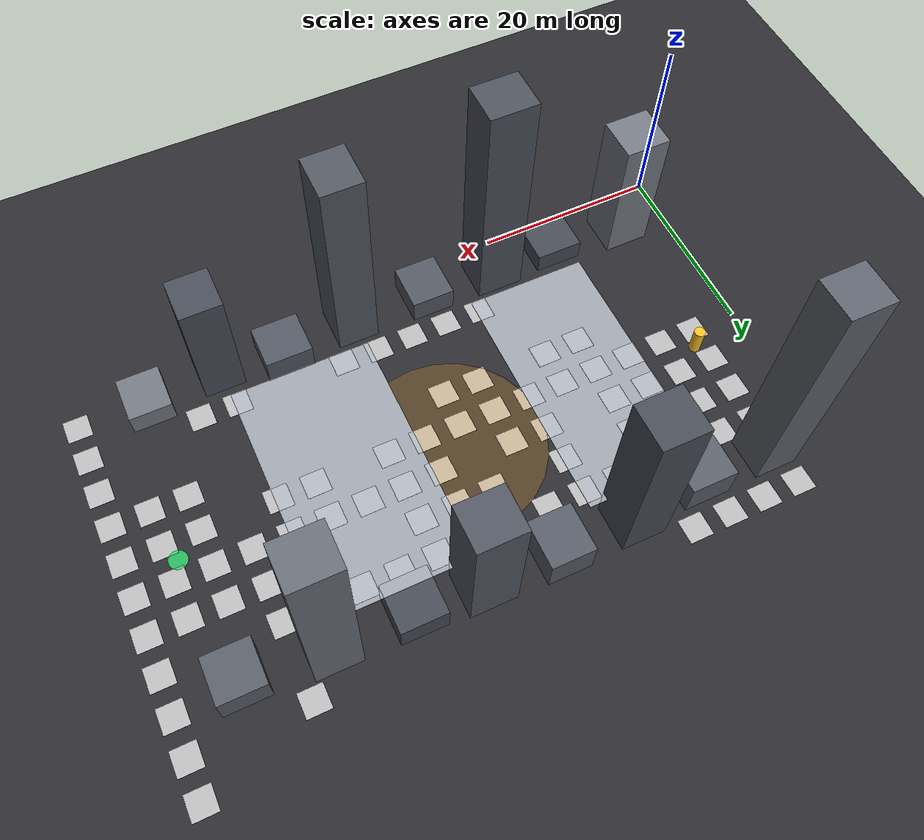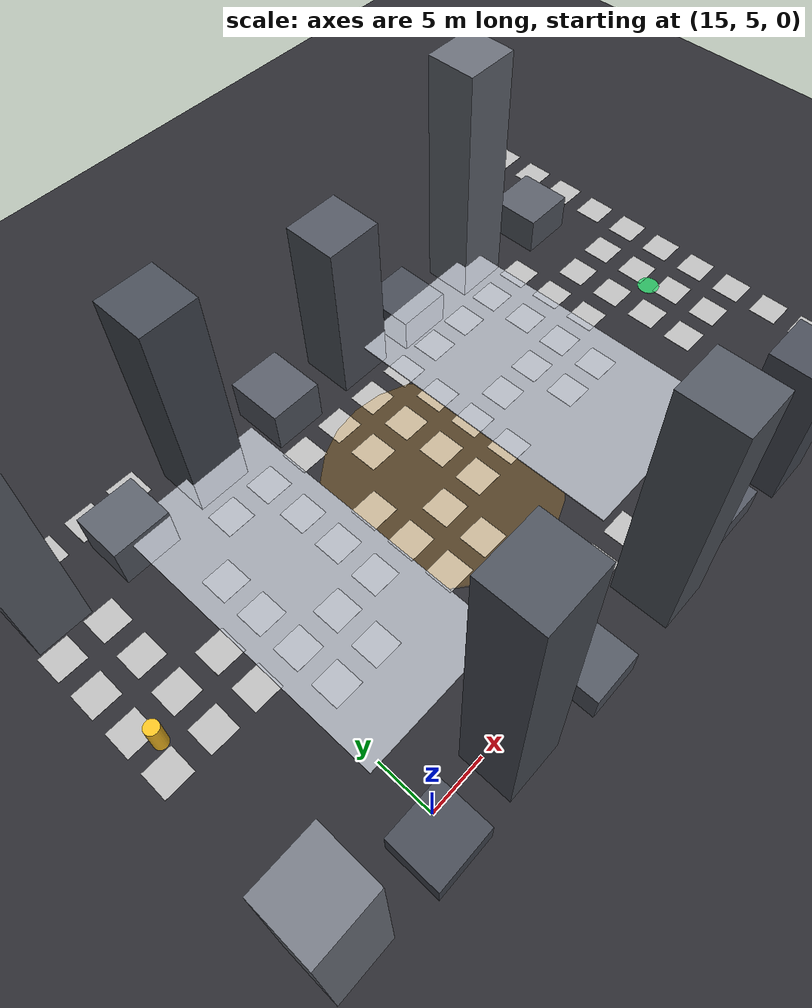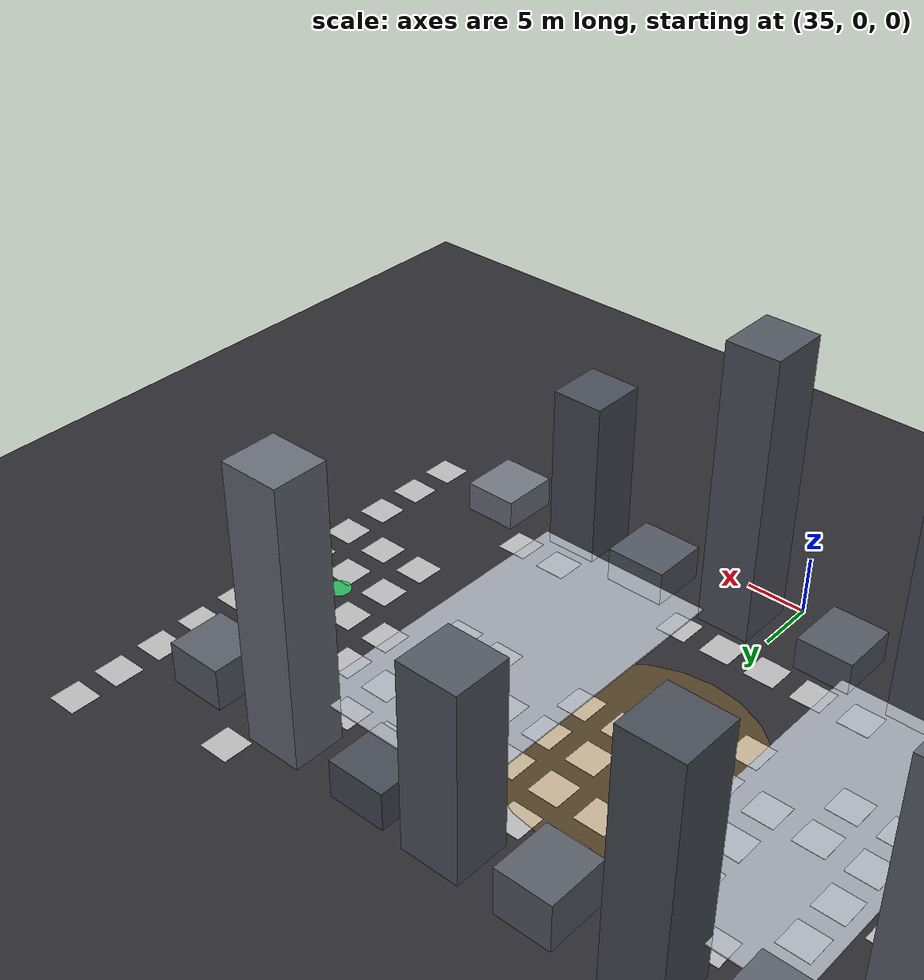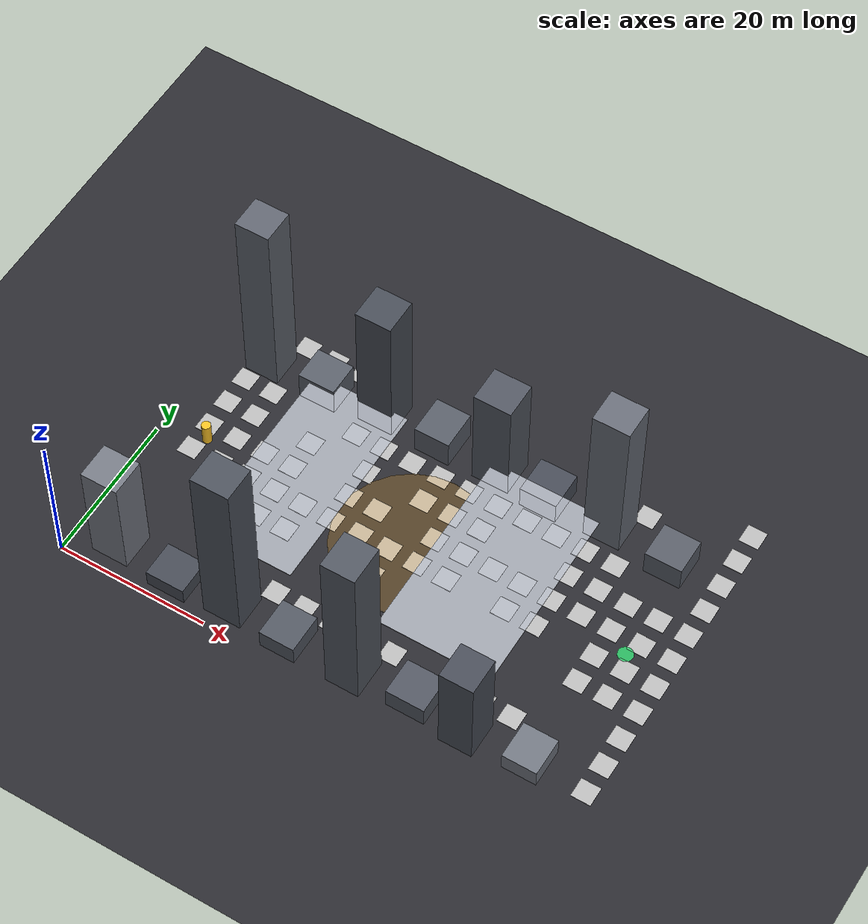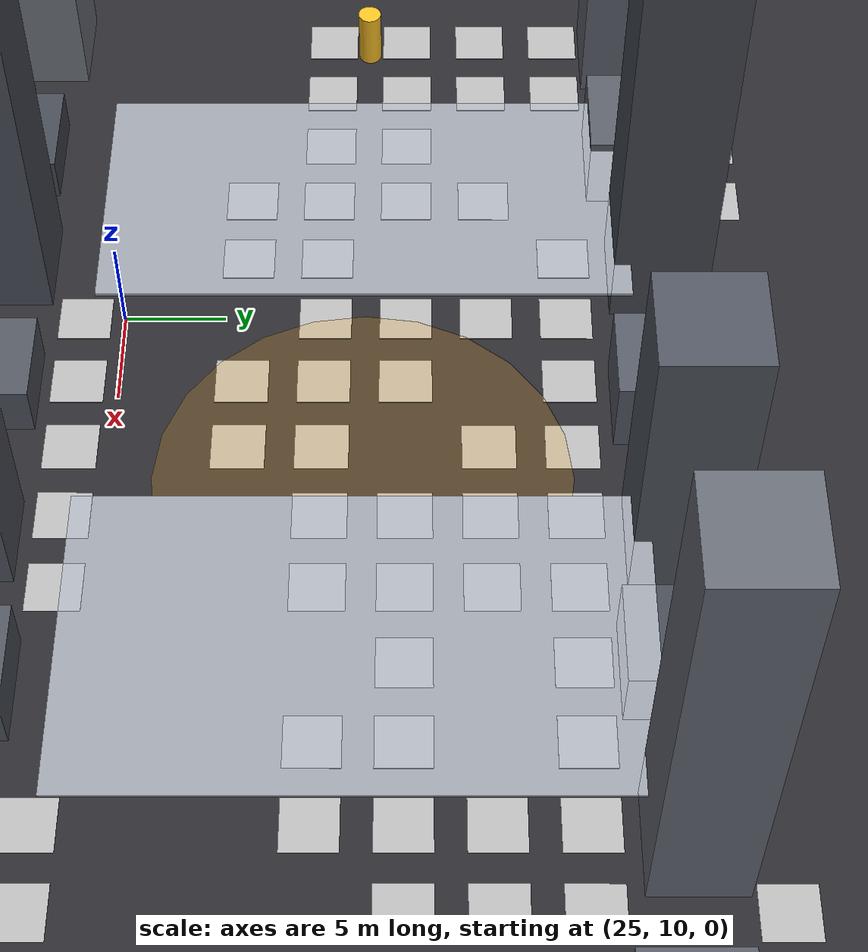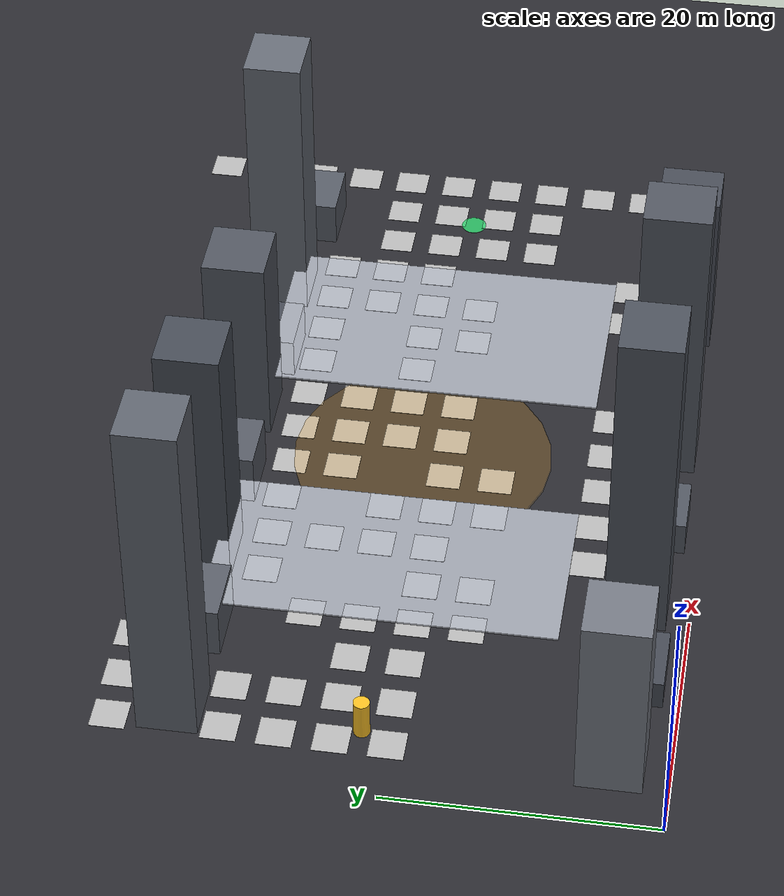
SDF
<sdf version="1.6">
 <world name="city">
  <gravity>0 0 -9.81</gravity>
  <scene>
   <ambient>0.5 0.52 0.55 1</ambient>
   <background>0.58 0.60 0.65 1</background>
   <shadows>true</shadows>
   <fog>
    <color>0.58 0.60 0.65 1</color>
    <type>linear</type>
    <start>16</start>
    <end>90</end>
    <density>0.045</density>
   </fog>
  </scene>
  <light name="sun" type="directional">
   <pose>0 0 40 0 0 0</pose>
   <diffuse>0.9 0.9 0.9 1</diffuse>
   <specular>0.2 0.2 0.2 1</specular>
   <direction>-0.4 0.3 -0.9</direction>
  </light>
  <model name="ground">
   <static>true</static>
   <link name="link">
    <collision name="c"><geometry><plane><normal>0 0 1</normal><size>400 400</size></plane></geometry></collision>
    <visual name="v">
     <geometry><plane><normal>0 0 1</normal><size>400 400</size></plane></geometry>
     <material><ambient>0.17 0.17 0.19</ambient><diffuse>0.17 0.17 0.19</diffuse></material>
    </visual>
   </link>
  </model>
  <model name="haze0">
   <static>true</static>
   <pose>46.000 22.000 3.60 0 0 0</pose>
   <link name="l">
    <visual name="v">
     <geometry><box><size>15.0 26.0 0.15</size></box></geometry>
     <material><ambient>0.72 0.74 0.78 0.88</ambient><diffuse>0.72 0.74 0.78 0.88</diffuse></material>
     <transparency>0.12</transparency>
    </visual>
   </link>
  </model>
  <model name="haze1">
   <static>true</static>
   <pose>20.000 22.000 3.60 0 0 0</pose>
   <link name="l">
    <visual name="v">
     <geometry><box><size>13.0 26.0 0.15</size></box></geometry>
     <material><ambient>0.72 0.74 0.78 0.88</ambient><diffuse>0.72 0.74 0.78 0.88</diffuse></material>
     <transparency>0.12</transparency>
    </visual>
   </link>
  </model>
  <model name="bldg0">
   <static>true</static>
   <pose>5.598 4.228 7.728 0 0 0</pose>
   <link name="l">
    <collision name="c">
     <geometry><box><size>4.9079999523237765 4.783280377645961 15.456229566302445</size></box></geometry>
    </collision>
    <visual name="v">
     <geometry><box><size>4.9079999523237765 4.783280377645961 15.456229566302445</size></box></geometry>
     <material>
      <ambient>0.4579045112528012 0.4779045112528012 0.5179045112528011 1</ambient>
      <diffuse>0.4579045112528012 0.4779045112528012 0.5179045112528011 1</diffuse>
     </material>
    </visual>
   </link>
  </model>
  <model name="bldg2">
   <static>true</static>
   <pose>6.353 35.679 13.980 0 0 0</pose>
   <link name="l">
    <collision name="c">
     <geometry><box><size>4.586155961119643 4.433868333320952 27.960979341909052</size></box></geometry>
    </collision>
    <visual name="v">
     <geometry><box><size>4.586155961119643 4.433868333320952 27.960979341909052</size></box></geometry>
     <material>
      <ambient>0.37586106463982594 0.39586106463982595 0.43586106463982593 1</ambient>
      <diffuse>0.37586106463982594 0.39586106463982595 0.43586106463982593 1</diffuse>
     </material>
    </visual>
   </link>
  </model>
  <model name="bldg4">
   <static>true</static>
   <pose>13.997 3.539 1.170 0 0 0</pose>
   <link name="l">
    <collision name="c">
     <geometry><box><size>5.161571293699209 4.694757312674667 2.340588724838554</size></box></geometry>
    </collision>
    <visual name="v">
     <geometry><box><size>5.161571293699209 4.694757312674667 2.340588724838554</size></box></geometry>
     <material>
      <ambient>0.2711304226191026 0.2911304226191026 0.3311304226191026 1</ambient>
      <diffuse>0.2711304226191026 0.2911304226191026 0.3311304226191026 1</diffuse>
     </material>
    </visual>
   </link>
  </model>
  <model name="bldg6">
   <static>true</static>
   <pose>14.439 35.682 2.066 0 0 0</pose>
   <link name="l">
    <collision name="c">
     <geometry><box><size>5.024207479938134 4.566849772177902 4.131291794526651</size></box></geometry>
    </collision>
    <visual name="v">
     <geometry><box><size>5.024207479938134 4.566849772177902 4.131291794526651</size></box></geometry>
     <material>
      <ambient>0.35138545612405936 0.3713854561240594 0.41138545612405936 1</ambient>
      <diffuse>0.35138545612405936 0.3713854561240594 0.41138545612405936 1</diffuse>
     </material>
    </visual>
   </link>
  </model>
  <model name="bldg8">
   <static>true</static>
   <pose>21.547 3.972 13.385 0 0 0</pose>
   <link name="l">
    <collision name="c">
     <geometry><box><size>5.061614468026217 4.560863538630194 26.770679133671653</size></box></geometry>
    </collision>
    <visual name="v">
     <geometry><box><size>5.061614468026217 4.560863538630194 26.770679133671653</size></box></geometry>
     <material>
      <ambient>0.2994209570516444 0.3194209570516444 0.3594209570516444 1</ambient>
      <diffuse>0.2994209570516444 0.3194209570516444 0.3594209570516444 1</diffuse>
     </material>
    </visual>
   </link>
  </model>
  <model name="bldg10">
   <static>true</static>
   <pose>22.262 36.591 10.403 0 0 0</pose>
   <link name="l">
    <collision name="c">
     <geometry><box><size>4.796808612363529 4.793231684387425 20.806894373819596</size></box></geometry>
    </collision>
    <visual name="v">
     <geometry><box><size>4.796808612363529 4.793231684387425 20.806894373819596</size></box></geometry>
     <material>
      <ambient>0.27669576715477995 0.29669576715477997 0.33669576715477995 1</ambient>
      <diffuse>0.27669576715477995 0.29669576715477997 0.33669576715477995 1</diffuse>
     </material>
    </visual>
   </link>
  </model>
  <model name="bldg12">
   <static>true</static>
   <pose>29.617 3.604 1.381 0 0 0</pose>
   <link name="l">
    <collision name="c">
     <geometry><box><size>4.678565817079893 5.141658886268009 2.7625495245760283</size></box></geometry>
    </collision>
    <visual name="v">
     <geometry><box><size>4.678565817079893 5.141658886268009 2.7625495245760283</size></box></geometry>
     <material>
      <ambient>0.32177276819323664 0.34177276819323665 0.38177276819323663 1</ambient>
      <diffuse>0.32177276819323664 0.34177276819323665 0.38177276819323663 1</diffuse>
     </material>
    </visual>
   </link>
  </model>
  <model name="bldg14">
   <static>true</static>
   <pose>30.478 36.550 2.058 0 0 0</pose>
   <link name="l">
    <collision name="c">
     <geometry><box><size>4.725611727939748 5.191287703294076 4.115145483852131</size></box></geometry>
    </collision>
    <visual name="v">
     <geometry><box><size>4.725611727939748 5.191287703294076 4.115145483852131</size></box></geometry>
     <material>
      <ambient>0.3417865659885859 0.36178656598858594 0.4017865659885859 1</ambient>
      <diffuse>0.3417865659885859 0.36178656598858594 0.4017865659885859 1</diffuse>
     </material>
    </visual>
   </link>
  </model>
  <model name="bldg16">
   <static>true</static>
   <pose>38.451 3.595 12.191 0 0 0</pose>
   <link name="l">
    <collision name="c">
     <geometry><box><size>4.4554681208088 5.044225420996331 24.382665960957162</size></box></geometry>
    </collision>
    <visual name="v">
     <geometry><box><size>4.4554681208088 5.044225420996331 24.382665960957162</size></box></geometry>
     <material>
      <ambient>0.32032759217134293 0.34032759217134295 0.38032759217134293 1</ambient>
      <diffuse>0.32032759217134293 0.34032759217134295 0.38032759217134293 1</diffuse>
     </material>
    </visual>
   </link>
  </model>
  <model name="bldg18">
   <static>true</static>
   <pose>38.479 36.580 8.018 0 0 0</pose>
   <link name="l">
    <collision name="c">
     <geometry><box><size>4.996678183844516 4.783178556259883 16.03543676609858</size></box></geometry>
    </collision>
    <visual name="v">
     <geometry><box><size>4.996678183844516 4.783178556259883 16.03543676609858</size></box></geometry>
     <material>
      <ambient>0.31978629177319806 0.3397862917731981 0.37978629177319806 1</ambient>
      <diffuse>0.31978629177319806 0.3397862917731981 0.37978629177319806 1</diffuse>
     </material>
    </visual>
   </link>
  </model>
  <model name="bldg20">
   <static>true</static>
   <pose>46.406 4.354 1.469 0 0 0</pose>
   <link name="l">
    <collision name="c">
     <geometry><box><size>5.105162241272678 4.881084625558635 2.9373814900652224</size></box></geometry>
    </collision>
    <visual name="v">
     <geometry><box><size>5.105162241272678 4.881084625558635 2.9373814900652224</size></box></geometry>
     <material>
      <ambient>0.31938079990490065 0.33938079990490067 0.37938079990490065 1</ambient>
      <diffuse>0.31938079990490065 0.33938079990490067 0.37938079990490065 1</diffuse>
     </material>
    </visual>
   </link>
  </model>
  <model name="bldg22">
   <static>true</static>
   <pose>45.428 36.112 1.643 0 0 0</pose>
   <link name="l">
    <collision name="c">
     <geometry><box><size>4.915087117253336 5.081345659230206 3.2855484137417323</size></box></geometry>
    </collision>
    <visual name="v">
     <geometry><box><size>4.915087117253336 5.081345659230206 3.2855484137417323</size></box></geometry>
     <material>
      <ambient>0.27136447679390635 0.29136447679390637 0.33136447679390635 1</ambient>
      <diffuse>0.27136447679390635 0.29136447679390637 0.33136447679390635 1</diffuse>
     </material>
    </visual>
   </link>
  </model>
  <model name="bldg24">
   <static>true</static>
   <pose>53.514 3.513 7.127 0 0 0</pose>
   <link name="l">
    <collision name="c">
     <geometry><box><size>4.420253602515084 4.757484369195373 14.253215321527673</size></box></geometry>
    </collision>
    <visual name="v">
     <geometry><box><size>4.420253602515084 4.757484369195373 14.253215321527673</size></box></geometry>
     <material>
      <ambient>0.2802116742103209 0.3002116742103209 0.3402116742103209 1</ambient>
      <diffuse>0.2802116742103209 0.3002116742103209 0.3402116742103209 1</diffuse>
     </material>
    </visual>
   </link>
  </model>
  <model name="bldg26">
   <static>true</static>
   <pose>53.853 36.252 11.687 0 0 0</pose>
   <link name="l">
    <collision name="c">
     <geometry><box><size>4.840028815013505 4.4369451380008345 23.374016702756848</size></box></geometry>
    </collision>
    <visual name="v">
     <geometry><box><size>4.840028815013505 4.4369451380008345 23.374016702756848</size></box></geometry>
     <material>
      <ambient>0.4061763672263972 0.42617636722639723 0.4661763672263972 1</ambient>
      <diffuse>0.4061763672263972 0.42617636722639723 0.4661763672263972 1</diffuse>
     </material>
    </visual>
   </link>
  </model>
  <model name="bldg28">
   <static>true</static>
   <pose>61.476 4.317 1.278 0 0 0</pose>
   <link name="l">
    <collision name="c">
     <geometry><box><size>4.540237717952963 4.96919008036445 2.5563930893004243</size></box></geometry>
    </collision>
    <visual name="v">
     <geometry><box><size>4.540237717952963 4.96919008036445 2.5563930893004243</size></box></geometry>
     <material>
      <ambient>0.44223431020492043 0.46223431020492045 0.5022343102049205 1</ambient>
      <diffuse>0.44223431020492043 0.46223431020492045 0.5022343102049205 1</diffuse>
     </material>
    </visual>
   </link>
  </model>
  <model name="bldg30">
   <static>true</static>
   <pose>62.538 35.518 1.808 0 0 0</pose>
   <link name="l">
    <collision name="c">
     <geometry><box><size>4.880943626523322 4.806570044724728 3.6160597511576924</size></box></geometry>
    </collision>
    <visual name="v">
     <geometry><box><size>4.880943626523322 4.806570044724728 3.6160597511576924</size></box></geometry>
     <material>
      <ambient>0.3450297950203185 0.3650297950203185 0.4050297950203185 1</ambient>
      <diffuse>0.3450297950203185 0.3650297950203185 0.4050297950203185 1</diffuse>
     </material>
    </visual>
   </link>
  </model>
  <model name="hard_patch">
   <static>true</static>
   <pose>35.000 22.000 0.03 0 0 0</pose>
   <link name="l">
    <visual name="v">
     <geometry><cylinder><radius>10.0</radius><length>0.3</length></cylinder></geometry>
     <material><ambient>0.96 0.62 0.04 0.16</ambient><diffuse>0.96 0.62 0.04 0.16</diffuse></material>
    </visual>
   </link>
  </model>
  <model name="aruco0">
   <static>true</static>
   <pose>5.000 20.000 0.02 0 0 0</pose>
   <link name="l">
    <visual name="v">
     <geometry><box><size>2.6 2.6 0.02</size></box></geometry>
     <material>
      <script><uri>file://materials/scripts</uri><uri>file://materials/textures</uri><name>aruco/0</name></script>
     </material>
    </visual>
   </link>
  </model>
  <model name="aruco1">
   <static>true</static>
   <pose>5.000 24.000 0.02 0 0 0</pose>
   <link name="l">
    <visual name="v">
     <geometry><box><size>2.6 2.6 0.02</size></box></geometry>
     <material>
      <script><uri>file://materials/scripts</uri><uri>file://materials/textures</uri><name>aruco/1</name></script>
     </material>
    </visual>
   </link>
  </model>
  <model name="aruco2">
   <static>true</static>
   <pose>5.000 28.000 0.02 0 0 0</pose>
   <link name="l">
    <visual name="v">
     <geometry><box><size>2.6 2.6 0.02</size></box></geometry>
     <material>
      <script><uri>file://materials/scripts</uri><uri>file://materials/textures</uri><name>aruco/2</name></script>
     </material>
    </visual>
   </link>
  </model>
  <model name="aruco3">
   <static>true</static>
   <pose>5.000 32.000 0.02 0 0 0</pose>
   <link name="l">
    <visual name="v">
     <geometry><box><size>2.6 2.6 0.02</size></box></geometry>
     <material>
      <script><uri>file://materials/scripts</uri><uri>file://materials/textures</uri><name>aruco/3</name></script>
     </material>
    </visual>
   </link>
  </model>
  <model name="aruco4">
   <static>true</static>
   <pose>5.000 40.000 0.02 0 0 0</pose>
   <link name="l">
    <visual name="v">
     <geometry><box><size>2.6 2.6 0.02</size></box></geometry>
     <material>
      <script><uri>file://materials/scripts</uri><uri>file://materials/textures</uri><name>aruco/4</name></script>
     </material>
    </visual>
   </link>
  </model>
  <model name="aruco5">
   <static>true</static>
   <pose>9.000 20.000 0.02 0 0 0</pose>
   <link name="l">
    <visual name="v">
     <geometry><box><size>2.6 2.6 0.02</size></box></geometry>
     <material>
      <script><uri>file://materials/scripts</uri><uri>file://materials/textures</uri><name>aruco/5</name></script>
     </material>
    </visual>
   </link>
  </model>
  <model name="aruco6">
   <static>true</static>
   <pose>9.000 24.000 0.02 0 0 0</pose>
   <link name="l">
    <visual name="v">
     <geometry><box><size>2.6 2.6 0.02</size></box></geometry>
     <material>
      <script><uri>file://materials/scripts</uri><uri>file://materials/textures</uri><name>aruco/6</name></script>
     </material>
    </visual>
   </link>
  </model>
  <model name="aruco7">
   <static>true</static>
   <pose>9.000 28.000 0.02 0 0 0</pose>
   <link name="l">
    <visual name="v">
     <geometry><box><size>2.6 2.6 0.02</size></box></geometry>
     <material>
      <script><uri>file://materials/scripts</uri><uri>file://materials/textures</uri><name>aruco/7</name></script>
     </material>
    </visual>
   </link>
  </model>
  <model name="aruco8">
   <static>true</static>
   <pose>9.000 32.000 0.02 0 0 0</pose>
   <link name="l">
    <visual name="v">
     <geometry><box><size>2.6 2.6 0.02</size></box></geometry>
     <material>
      <script><uri>file://materials/scripts</uri><uri>file://materials/textures</uri><name>aruco/8</name></script>
     </material>
    </visual>
   </link>
  </model>
  <model name="aruco9">
   <static>true</static>
   <pose>9.000 40.000 0.02 0 0 0</pose>
   <link name="l">
    <visual name="v">
     <geometry><box><size>2.6 2.6 0.02</size></box></geometry>
     <material>
      <script><uri>file://materials/scripts</uri><uri>file://materials/textures</uri><name>aruco/9</name></script>
     </material>
    </visual>
   </link>
  </model>
  <model name="aruco10">
   <static>true</static>
   <pose>13.000 20.000 0.02 0 0 0</pose>
   <link name="l">
    <visual name="v">
     <geometry><box><size>2.6 2.6 0.02</size></box></geometry>
     <material>
      <script><uri>file://materials/scripts</uri><uri>file://materials/textures</uri><name>aruco/10</name></script>
     </material>
    </visual>
   </link>
  </model>
  <model name="aruco11">
   <static>true</static>
   <pose>13.000 24.000 0.02 0 0 0</pose>
   <link name="l">
    <visual name="v">
     <geometry><box><size>2.6 2.6 0.02</size></box></geometry>
     <material>
      <script><uri>file://materials/scripts</uri><uri>file://materials/textures</uri><name>aruco/11</name></script>
     </material>
    </visual>
   </link>
  </model>
  <model name="aruco12">
   <static>true</static>
   <pose>13.000 40.000 0.02 0 0 0</pose>
   <link name="l">
    <visual name="v">
     <geometry><box><size>2.6 2.6 0.02</size></box></geometry>
     <material>
      <script><uri>file://materials/scripts</uri><uri>file://materials/textures</uri><name>aruco/12</name></script>
     </material>
    </visual>
   </link>
  </model>
  <model name="aruco13">
   <static>true</static>
   <pose>17.000 16.000 0.02 0 0 0</pose>
   <link name="l">
    <visual name="v">
     <geometry><box><size>2.6 2.6 0.02</size></box></geometry>
     <material>
      <script><uri>file://materials/scripts</uri><uri>file://materials/textures</uri><name>aruco/13</name></script>
     </material>
    </visual>
   </link>
  </model>
  <model name="aruco14">
   <static>true</static>
   <pose>17.000 20.000 0.02 0 0 0</pose>
   <link name="l">
    <visual name="v">
     <geometry><box><size>2.6 2.6 0.02</size></box></geometry>
     <material>
      <script><uri>file://materials/scripts</uri><uri>file://materials/textures</uri><name>aruco/14</name></script>
     </material>
    </visual>
   </link>
  </model>
  <model name="aruco15">
   <static>true</static>
   <pose>17.000 24.000 0.02 0 0 0</pose>
   <link name="l">
    <visual name="v">
     <geometry><box><size>2.6 2.6 0.02</size></box></geometry>
     <material>
      <script><uri>file://materials/scripts</uri><uri>file://materials/textures</uri><name>aruco/15</name></script>
     </material>
    </visual>
   </link>
  </model>
  <model name="aruco16">
   <static>true</static>
   <pose>17.000 28.000 0.02 0 0 0</pose>
   <link name="l">
    <visual name="v">
     <geometry><box><size>2.6 2.6 0.02</size></box></geometry>
     <material>
      <script><uri>file://materials/scripts</uri><uri>file://materials/textures</uri><name>aruco/16</name></script>
     </material>
    </visual>
   </link>
  </model>
  <model name="aruco17">
   <static>true</static>
   <pose>17.000 40.000 0.02 0 0 0</pose>
   <link name="l">
    <visual name="v">
     <geometry><box><size>2.6 2.6 0.02</size></box></geometry>
     <material>
      <script><uri>file://materials/scripts</uri><uri>file://materials/textures</uri><name>aruco/17</name></script>
     </material>
    </visual>
   </link>
  </model>
  <model name="aruco18">
   <static>true</static>
   <pose>21.000 16.000 0.02 0 0 0</pose>
   <link name="l">
    <visual name="v">
     <geometry><box><size>2.6 2.6 0.02</size></box></geometry>
     <material>
      <script><uri>file://materials/scripts</uri><uri>file://materials/textures</uri><name>aruco/18</name></script>
     </material>
    </visual>
   </link>
  </model>
  <model name="aruco19">
   <static>true</static>
   <pose>21.000 20.000 0.02 0 0 0</pose>
   <link name="l">
    <visual name="v">
     <geometry><box><size>2.6 2.6 0.02</size></box></geometry>
     <material>
      <script><uri>file://materials/scripts</uri><uri>file://materials/textures</uri><name>aruco/19</name></script>
     </material>
    </visual>
   </link>
  </model>
  <model name="aruco20">
   <static>true</static>
   <pose>21.000 32.000 0.02 0 0 0</pose>
   <link name="l">
    <visual name="v">
     <geometry><box><size>2.6 2.6 0.02</size></box></geometry>
     <material>
      <script><uri>file://materials/scripts</uri><uri>file://materials/textures</uri><name>aruco/20</name></script>
     </material>
    </visual>
   </link>
  </model>
  <model name="aruco21">
   <static>true</static>
   <pose>25.000 8.000 0.02 0 0 0</pose>
   <link name="l">
    <visual name="v">
     <geometry><box><size>2.6 2.6 0.02</size></box></geometry>
     <material>
      <script><uri>file://materials/scripts</uri><uri>file://materials/textures</uri><name>aruco/21</name></script>
     </material>
    </visual>
   </link>
  </model>
  <model name="aruco22">
   <static>true</static>
   <pose>25.000 20.000 0.02 0 0 0</pose>
   <link name="l">
    <visual name="v">
     <geometry><box><size>2.6 2.6 0.02</size></box></geometry>
     <material>
      <script><uri>file://materials/scripts</uri><uri>file://materials/textures</uri><name>aruco/22</name></script>
     </material>
    </visual>
   </link>
  </model>
  <model name="aruco23">
   <static>true</static>
   <pose>25.000 24.000 0.02 0 0 0</pose>
   <link name="l">
    <visual name="v">
     <geometry><box><size>2.6 2.6 0.02</size></box></geometry>
     <material>
      <script><uri>file://materials/scripts</uri><uri>file://materials/textures</uri><name>aruco/23</name></script>
     </material>
    </visual>
   </link>
  </model>
  <model name="aruco24">
   <static>true</static>
   <pose>25.000 28.000 0.02 0 0 0</pose>
   <link name="l">
    <visual name="v">
     <geometry><box><size>2.6 2.6 0.02</size></box></geometry>
     <material>
      <script><uri>file://materials/scripts</uri><uri>file://materials/textures</uri><name>aruco/24</name></script>
     </material>
    </visual>
   </link>
  </model>
  <model name="aruco25">
   <static>true</static>
   <pose>25.000 32.000 0.02 0 0 0</pose>
   <link name="l">
    <visual name="v">
     <geometry><box><size>2.6 2.6 0.02</size></box></geometry>
     <material>
      <script><uri>file://materials/scripts</uri><uri>file://materials/textures</uri><name>aruco/25</name></script>
     </material>
    </visual>
   </link>
  </model>
  <model name="aruco26">
   <static>true</static>
   <pose>29.000 8.000 0.02 0 0 0</pose>
   <link name="l">
    <visual name="v">
     <geometry><box><size>2.6 2.6 0.02</size></box></geometry>
     <material>
      <script><uri>file://materials/scripts</uri><uri>file://materials/textures</uri><name>aruco/26</name></script>
     </material>
    </visual>
   </link>
  </model>
  <model name="aruco27">
   <static>true</static>
   <pose>29.000 16.000 0.02 0 0 0</pose>
   <link name="l">
    <visual name="v">
     <geometry><box><size>2.6 2.6 0.02</size></box></geometry>
     <material>
      <script><uri>file://materials/scripts</uri><uri>file://materials/textures</uri><name>aruco/27</name></script>
     </material>
    </visual>
   </link>
  </model>
  <model name="aruco28">
   <static>true</static>
   <pose>29.000 20.000 0.02 0 0 0</pose>
   <link name="l">
    <visual name="v">
     <geometry><box><size>2.6 2.6 0.02</size></box></geometry>
     <material>
      <script><uri>file://materials/scripts</uri><uri>file://materials/textures</uri><name>aruco/28</name></script>
     </material>
    </visual>
   </link>
  </model>
  <model name="aruco29">
   <static>true</static>
   <pose>29.000 24.000 0.02 0 0 0</pose>
   <link name="l">
    <visual name="v">
     <geometry><box><size>2.6 2.6 0.02</size></box></geometry>
     <material>
      <script><uri>file://materials/scripts</uri><uri>file://materials/textures</uri><name>aruco/29</name></script>
     </material>
    </visual>
   </link>
  </model>
  <model name="aruco30">
   <static>true</static>
   <pose>29.000 32.000 0.02 0 0 0</pose>
   <link name="l">
    <visual name="v">
     <geometry><box><size>2.6 2.6 0.02</size></box></geometry>
     <material>
      <script><uri>file://materials/scripts</uri><uri>file://materials/textures</uri><name>aruco/30</name></script>
     </material>
    </visual>
   </link>
  </model>
  <model name="aruco31">
   <static>true</static>
   <pose>33.000 8.000 0.02 0 0 0</pose>
   <link name="l">
    <visual name="v">
     <geometry><box><size>2.6 2.6 0.02</size></box></geometry>
     <material>
      <script><uri>file://materials/scripts</uri><uri>file://materials/textures</uri><name>aruco/31</name></script>
     </material>
    </visual>
   </link>
  </model>
  <model name="aruco32">
   <static>true</static>
   <pose>33.000 16.000 0.02 0 0 0</pose>
   <link name="l">
    <visual name="v">
     <geometry><box><size>2.6 2.6 0.02</size></box></geometry>
     <material>
      <script><uri>file://materials/scripts</uri><uri>file://materials/textures</uri><name>aruco/32</name></script>
     </material>
    </visual>
   </link>
  </model>
  <model name="aruco33">
   <static>true</static>
   <pose>33.000 20.000 0.02 0 0 0</pose>
   <link name="l">
    <visual name="v">
     <geometry><box><size>2.6 2.6 0.02</size></box></geometry>
     <material>
      <script><uri>file://materials/scripts</uri><uri>file://materials/textures</uri><name>aruco/33</name></script>
     </material>
    </visual>
   </link>
  </model>
  <model name="aruco34">
   <static>true</static>
   <pose>33.000 28.000 0.02 0 0 0</pose>
   <link name="l">
    <visual name="v">
     <geometry><box><size>2.6 2.6 0.02</size></box></geometry>
     <material>
      <script><uri>file://materials/scripts</uri><uri>file://materials/textures</uri><name>aruco/34</name></script>
     </material>
    </visual>
   </link>
  </model>
  <model name="aruco35">
   <static>true</static>
   <pose>33.000 32.000 0.02 0 0 0</pose>
   <link name="l">
    <visual name="v">
     <geometry><box><size>2.6 2.6 0.02</size></box></geometry>
     <material>
      <script><uri>file://materials/scripts</uri><uri>file://materials/textures</uri><name>aruco/35</name></script>
     </material>
    </visual>
   </link>
  </model>
  <model name="aruco36">
   <static>true</static>
   <pose>37.000 8.000 0.02 0 0 0</pose>
   <link name="l">
    <visual name="v">
     <geometry><box><size>2.6 2.6 0.02</size></box></geometry>
     <material>
      <script><uri>file://materials/scripts</uri><uri>file://materials/textures</uri><name>aruco/36</name></script>
     </material>
    </visual>
   </link>
  </model>
  <model name="aruco37">
   <static>true</static>
   <pose>37.000 20.000 0.02 0 0 0</pose>
   <link name="l">
    <visual name="v">
     <geometry><box><size>2.6 2.6 0.02</size></box></geometry>
     <material>
      <script><uri>file://materials/scripts</uri><uri>file://materials/textures</uri><name>aruco/37</name></script>
     </material>
    </visual>
   </link>
  </model>
  <model name="aruco38">
   <static>true</static>
   <pose>37.000 24.000 0.02 0 0 0</pose>
   <link name="l">
    <visual name="v">
     <geometry><box><size>2.6 2.6 0.02</size></box></geometry>
     <material>
      <script><uri>file://materials/scripts</uri><uri>file://materials/textures</uri><name>aruco/38</name></script>
     </material>
    </visual>
   </link>
  </model>
  <model name="aruco39">
   <static>true</static>
   <pose>37.000 28.000 0.02 0 0 0</pose>
   <link name="l">
    <visual name="v">
     <geometry><box><size>2.6 2.6 0.02</size></box></geometry>
     <material>
      <script><uri>file://materials/scripts</uri><uri>file://materials/textures</uri><name>aruco/39</name></script>
     </material>
    </visual>
   </link>
  </model>
  <model name="aruco40">
   <static>true</static>
   <pose>37.000 32.000 0.02 0 0 0</pose>
   <link name="l">
    <visual name="v">
     <geometry><box><size>2.6 2.6 0.02</size></box></geometry>
     <material>
      <script><uri>file://materials/scripts</uri><uri>file://materials/textures</uri><name>aruco/40</name></script>
     </material>
    </visual>
   </link>
  </model>
  <model name="aruco41">
   <static>true</static>
   <pose>41.000 8.000 0.02 0 0 0</pose>
   <link name="l">
    <visual name="v">
     <geometry><box><size>2.6 2.6 0.02</size></box></geometry>
     <material>
      <script><uri>file://materials/scripts</uri><uri>file://materials/textures</uri><name>aruco/41</name></script>
     </material>
    </visual>
   </link>
  </model>
  <model name="aruco42">
   <static>true</static>
   <pose>41.000 20.000 0.02 0 0 0</pose>
   <link name="l">
    <visual name="v">
     <geometry><box><size>2.6 2.6 0.02</size></box></geometry>
     <material>
      <script><uri>file://materials/scripts</uri><uri>file://materials/textures</uri><name>aruco/42</name></script>
     </material>
    </visual>
   </link>
  </model>
  <model name="aruco43">
   <static>true</static>
   <pose>41.000 24.000 0.02 0 0 0</pose>
   <link name="l">
    <visual name="v">
     <geometry><box><size>2.6 2.6 0.02</size></box></geometry>
     <material>
      <script><uri>file://materials/scripts</uri><uri>file://materials/textures</uri><name>aruco/43</name></script>
     </material>
    </visual>
   </link>
  </model>
  <model name="aruco44">
   <static>true</static>
   <pose>41.000 28.000 0.02 0 0 0</pose>
   <link name="l">
    <visual name="v">
     <geometry><box><size>2.6 2.6 0.02</size></box></geometry>
     <material>
      <script><uri>file://materials/scripts</uri><uri>file://materials/textures</uri><name>aruco/44</name></script>
     </material>
    </visual>
   </link>
  </model>
  <model name="aruco45">
   <static>true</static>
   <pose>41.000 32.000 0.02 0 0 0</pose>
   <link name="l">
    <visual name="v">
     <geometry><box><size>2.6 2.6 0.02</size></box></geometry>
     <material>
      <script><uri>file://materials/scripts</uri><uri>file://materials/textures</uri><name>aruco/45</name></script>
     </material>
    </visual>
   </link>
  </model>
  <model name="aruco46">
   <static>true</static>
   <pose>45.000 24.000 0.02 0 0 0</pose>
   <link name="l">
    <visual name="v">
     <geometry><box><size>2.6 2.6 0.02</size></box></geometry>
     <material>
      <script><uri>file://materials/scripts</uri><uri>file://materials/textures</uri><name>aruco/46</name></script>
     </material>
    </visual>
   </link>
  </model>
  <model name="aruco47">
   <static>true</static>
   <pose>45.000 32.000 0.02 0 0 0</pose>
   <link name="l">
    <visual name="v">
     <geometry><box><size>2.6 2.6 0.02</size></box></geometry>
     <material>
      <script><uri>file://materials/scripts</uri><uri>file://materials/textures</uri><name>aruco/47</name></script>
     </material>
    </visual>
   </link>
  </model>
  <model name="aruco48">
   <static>true</static>
   <pose>49.000 20.000 0.02 0 0 0</pose>
   <link name="l">
    <visual name="v">
     <geometry><box><size>2.6 2.6 0.02</size></box></geometry>
     <material>
      <script><uri>file://materials/scripts</uri><uri>file://materials/textures</uri><name>aruco/48</name></script>
     </material>
    </visual>
   </link>
  </model>
  <model name="aruco49">
   <static>true</static>
   <pose>49.000 24.000 0.02 0 0 0</pose>
   <link name="l">
    <visual name="v">
     <geometry><box><size>2.6 2.6 0.02</size></box></geometry>
     <material>
      <script><uri>file://materials/scripts</uri><uri>file://materials/textures</uri><name>aruco/49</name></script>
     </material>
    </visual>
   </link>
  </model>
  <model name="aruco50">
   <static>true</static>
   <pose>49.000 32.000 0.02 0 0 0</pose>
   <link name="l">
    <visual name="v">
     <geometry><box><size>2.6 2.6 0.02</size></box></geometry>
     <material>
      <script><uri>file://materials/scripts</uri><uri>file://materials/textures</uri><name>aruco/50</name></script>
     </material>
    </visual>
   </link>
  </model>
  <model name="aruco51">
   <static>true</static>
   <pose>53.000 8.000 0.02 0 0 0</pose>
   <link name="l">
    <visual name="v">
     <geometry><box><size>2.6 2.6 0.02</size></box></geometry>
     <material>
      <script><uri>file://materials/scripts</uri><uri>file://materials/textures</uri><name>aruco/51</name></script>
     </material>
    </visual>
   </link>
  </model>
  <model name="aruco52">
   <static>true</static>
   <pose>53.000 20.000 0.02 0 0 0</pose>
   <link name="l">
    <visual name="v">
     <geometry><box><size>2.6 2.6 0.02</size></box></geometry>
     <material>
      <script><uri>file://materials/scripts</uri><uri>file://materials/textures</uri><name>aruco/52</name></script>
     </material>
    </visual>
   </link>
  </model>
  <model name="aruco53">
   <static>true</static>
   <pose>53.000 24.000 0.02 0 0 0</pose>
   <link name="l">
    <visual name="v">
     <geometry><box><size>2.6 2.6 0.02</size></box></geometry>
     <material>
      <script><uri>file://materials/scripts</uri><uri>file://materials/textures</uri><name>aruco/53</name></script>
     </material>
    </visual>
   </link>
  </model>
  <model name="aruco54">
   <static>true</static>
   <pose>53.000 28.000 0.02 0 0 0</pose>
   <link name="l">
    <visual name="v">
     <geometry><box><size>2.6 2.6 0.02</size></box></geometry>
     <material>
      <script><uri>file://materials/scripts</uri><uri>file://materials/textures</uri><name>aruco/54</name></script>
     </material>
    </visual>
   </link>
  </model>
  <model name="aruco55">
   <static>true</static>
   <pose>53.000 32.000 0.02 0 0 0</pose>
   <link name="l">
    <visual name="v">
     <geometry><box><size>2.6 2.6 0.02</size></box></geometry>
     <material>
      <script><uri>file://materials/scripts</uri><uri>file://materials/textures</uri><name>aruco/55</name></script>
     </material>
    </visual>
   </link>
  </model>
  <model name="aruco56">
   <static>true</static>
   <pose>57.000 8.000 0.02 0 0 0</pose>
   <link name="l">
    <visual name="v">
     <geometry><box><size>2.6 2.6 0.02</size></box></geometry>
     <material>
      <script><uri>file://materials/scripts</uri><uri>file://materials/textures</uri><name>aruco/56</name></script>
     </material>
    </visual>
   </link>
  </model>
  <model name="aruco57">
   <static>true</static>
   <pose>57.000 24.000 0.02 0 0 0</pose>
   <link name="l">
    <visual name="v">
     <geometry><box><size>2.6 2.6 0.02</size></box></geometry>
     <material>
      <script><uri>file://materials/scripts</uri><uri>file://materials/textures</uri><name>aruco/57</name></script>
     </material>
    </visual>
   </link>
  </model>
  <model name="aruco58">
   <static>true</static>
   <pose>57.000 28.000 0.02 0 0 0</pose>
   <link name="l">
    <visual name="v">
     <geometry><box><size>2.6 2.6 0.02</size></box></geometry>
     <material>
      <script><uri>file://materials/scripts</uri><uri>file://materials/textures</uri><name>aruco/58</name></script>
     </material>
    </visual>
   </link>
  </model>
  <model name="aruco59">
   <static>true</static>
   <pose>57.000 32.000 0.02 0 0 0</pose>
   <link name="l">
    <visual name="v">
     <geometry><box><size>2.6 2.6 0.02</size></box></geometry>
     <material>
      <script><uri>file://materials/scripts</uri><uri>file://materials/textures</uri><name>aruco/59</name></script>
     </material>
    </visual>
   </link>
  </model>
  <model name="aruco60">
   <static>true</static>
   <pose>57.000 40.000 0.02 0 0 0</pose>
   <link name="l">
    <visual name="v">
     <geometry><box><size>2.6 2.6 0.02</size></box></geometry>
     <material>
      <script><uri>file://materials/scripts</uri><uri>file://materials/textures</uri><name>aruco/60</name></script>
     </material>
    </visual>
   </link>
  </model>
  <model name="aruco61">
   <static>true</static>
   <pose>61.000 16.000 0.02 0 0 0</pose>
   <link name="l">
    <visual name="v">
     <geometry><box><size>2.6 2.6 0.02</size></box></geometry>
     <material>
      <script><uri>file://materials/scripts</uri><uri>file://materials/textures</uri><name>aruco/61</name></script>
     </material>
    </visual>
   </link>
  </model>
  <model name="aruco62">
   <static>true</static>
   <pose>61.000 20.000 0.02 0 0 0</pose>
   <link name="l">
    <visual name="v">
     <geometry><box><size>2.6 2.6 0.02</size></box></geometry>
     <material>
      <script><uri>file://materials/scripts</uri><uri>file://materials/textures</uri><name>aruco/62</name></script>
     </material>
    </visual>
   </link>
  </model>
  <model name="aruco63">
   <static>true</static>
   <pose>61.000 24.000 0.02 0 0 0</pose>
   <link name="l">
    <visual name="v">
     <geometry><box><size>2.6 2.6 0.02</size></box></geometry>
     <material>
      <script><uri>file://materials/scripts</uri><uri>file://materials/textures</uri><name>aruco/63</name></script>
     </material>
    </visual>
   </link>
  </model>
  <model name="aruco64">
   <static>true</static>
   <pose>61.000 28.000 0.02 0 0 0</pose>
   <link name="l">
    <visual name="v">
     <geometry><box><size>2.6 2.6 0.02</size></box></geometry>
     <material>
      <script><uri>file://materials/scripts</uri><uri>file://materials/textures</uri><name>aruco/64</name></script>
     </material>
    </visual>
   </link>
  </model>
  <model name="aruco65">
   <static>true</static>
   <pose>65.000 16.000 0.02 0 0 0</pose>
   <link name="l">
    <visual name="v">
     <geometry><box><size>2.6 2.6 0.02</size></box></geometry>
     <material>
      <script><uri>file://materials/scripts</uri><uri>file://materials/textures</uri><name>aruco/65</name></script>
     </material>
    </visual>
   </link>
  </model>
  <model name="aruco66">
   <static>true</static>
   <pose>65.000 20.000 0.02 0 0 0</pose>
   <link name="l">
    <visual name="v">
     <geometry><box><size>2.6 2.6 0.02</size></box></geometry>
     <material>
      <script><uri>file://materials/scripts</uri><uri>file://materials/textures</uri><name>aruco/66</name></script>
     </material>
    </visual>
   </link>
  </model>
  <model name="aruco67">
   <static>true</static>
   <pose>65.000 24.000 0.02 0 0 0</pose>
   <link name="l">
    <visual name="v">
     <geometry><box><size>2.6 2.6 0.02</size></box></geometry>
     <material>
      <script><uri>file://materials/scripts</uri><uri>file://materials/textures</uri><name>aruco/67</name></script>
     </material>
    </visual>
   </link>
  </model>
  <model name="aruco68">
   <static>true</static>
   <pose>65.000 28.000 0.02 0 0 0</pose>
   <link name="l">
    <visual name="v">
     <geometry><box><size>2.6 2.6 0.02</size></box></geometry>
     <material>
      <script><uri>file://materials/scripts</uri><uri>file://materials/textures</uri><name>aruco/68</name></script>
     </material>
    </visual>
   </link>
  </model>
  <model name="aruco69">
   <static>true</static>
   <pose>69.000 4.000 0.02 0 0 0</pose>
   <link name="l">
    <visual name="v">
     <geometry><box><size>2.6 2.6 0.02</size></box></geometry>
     <material>
      <script><uri>file://materials/scripts</uri><uri>file://materials/textures</uri><name>aruco/69</name></script>
     </material>
    </visual>
   </link>
  </model>
  <model name="aruco70">
   <static>true</static>
   <pose>69.000 8.000 0.02 0 0 0</pose>
   <link name="l">
    <visual name="v">
     <geometry><box><size>2.6 2.6 0.02</size></box></geometry>
     <material>
      <script><uri>file://materials/scripts</uri><uri>file://materials/textures</uri><name>aruco/70</name></script>
     </material>
    </visual>
   </link>
  </model>
  <model name="aruco71">
   <static>true</static>
   <pose>69.000 12.000 0.02 0 0 0</pose>
   <link name="l">
    <visual name="v">
     <geometry><box><size>2.6 2.6 0.02</size></box></geometry>
     <material>
      <script><uri>file://materials/scripts</uri><uri>file://materials/textures</uri><name>aruco/71</name></script>
     </material>
    </visual>
   </link>
  </model>
  <model name="aruco72">
   <static>true</static>
   <pose>69.000 16.000 0.02 0 0 0</pose>
   <link name="l">
    <visual name="v">
     <geometry><box><size>2.6 2.6 0.02</size></box></geometry>
     <material>
      <script><uri>file://materials/scripts</uri><uri>file://materials/textures</uri><name>aruco/72</name></script>
     </material>
    </visual>
   </link>
  </model>
  <model name="aruco73">
   <static>true</static>
   <pose>69.000 20.000 0.02 0 0 0</pose>
   <link name="l">
    <visual name="v">
     <geometry><box><size>2.6 2.6 0.02</size></box></geometry>
     <material>
      <script><uri>file://materials/scripts</uri><uri>file://materials/textures</uri><name>aruco/73</name></script>
     </material>
    </visual>
   </link>
  </model>
  <model name="aruco74">
   <static>true</static>
   <pose>69.000 24.000 0.02 0 0 0</pose>
   <link name="l">
    <visual name="v">
     <geometry><box><size>2.6 2.6 0.02</size></box></geometry>
     <material>
      <script><uri>file://materials/scripts</uri><uri>file://materials/textures</uri><name>aruco/74</name></script>
     </material>
    </visual>
   </link>
  </model>
  <model name="aruco75">
   <static>true</static>
   <pose>69.000 28.000 0.02 0 0 0</pose>
   <link name="l">
    <visual name="v">
     <geometry><box><size>2.6 2.6 0.02</size></box></geometry>
     <material>
      <script><uri>file://materials/scripts</uri><uri>file://materials/textures</uri><name>aruco/75</name></script>
     </material>
    </visual>
   </link>
  </model>
  <model name="aruco76">
   <static>true</static>
   <pose>69.000 32.000 0.02 0 0 0</pose>
   <link name="l">
    <visual name="v">
     <geometry><box><size>2.6 2.6 0.02</size></box></geometry>
     <material>
      <script><uri>file://materials/scripts</uri><uri>file://materials/textures</uri><name>aruco/76</name></script>
     </material>
    </visual>
   </link>
  </model>
  <model name="aruco77">
   <static>true</static>
   <pose>69.000 36.000 0.02 0 0 0</pose>
   <link name="l">
    <visual name="v">
     <geometry><box><size>2.6 2.6 0.02</size></box></geometry>
     <material>
      <script><uri>file://materials/scripts</uri><uri>file://materials/textures</uri><name>aruco/77</name></script>
     </material>
    </visual>
   </link>
  </model>
  <model name="aruco78">
   <static>true</static>
   <pose>69.000 40.000 0.02 0 0 0</pose>
   <link name="l">
    <visual name="v">
     <geometry><box><size>2.6 2.6 0.02</size></box></geometry>
     <material>
      <script><uri>file://materials/scripts</uri><uri>file://materials/textures</uri><name>aruco/78</name></script>
     </material>
    </visual>
   </link>
  </model>
  <model name="aruco79">
   <static>true</static>
   <pose>69.000 44.000 0.02 0 0 0</pose>
   <link name="l">
    <visual name="v">
     <geometry><box><size>2.6 2.6 0.02</size></box></geometry>
     <material>
      <script><uri>file://materials/scripts</uri><uri>file://materials/textures</uri><name>aruco/79</name></script>
     </material>
    </visual>
   </link>
  </model>
  <model name="target_B">
   <static>true</static>
   <pose>6.000 22.000 1.500 0 0 0</pose>
   <link name="l">
    <collision name="c">
     <geometry><cylinder><radius>0.6</radius><length>3.0</length></cylinder></geometry>
    </collision>
    <visual name="v">
     <geometry><cylinder><radius>0.6</radius><length>3.0</length></cylinder></geometry>
     <material><ambient>0.98 0.75 0.14 1</ambient><diffuse>0.98 0.75 0.14 1</diffuse></material>
    </visual>
   </link>
  </model>
  <model name="start_pad">
   <static>true</static>
   <pose>64.000 22.000 0.020 0 0 0</pose>
   <link name="l">
    <collision name="c">
     <geometry><cylinder><radius>1.0</radius><length>0.04</length></cylinder></geometry>
    </collision>
    <visual name="v">
     <geometry><cylinder><radius>1.0</radius><length>0.04</length></cylinder></geometry>
     <material><ambient>0.2 0.83 0.44 0.85</ambient><diffuse>0.2 0.83 0.44 0.85</diffuse></material>
    </visual>
   </link>
  </model>
  <plugin name="gazebo_ros_state" filename="libgazebo_ros_state.so">
   <ros><namespace>/gazebo</namespace></ros>
   <update_rate>0.0</update_rate>
  </plugin>
  <physics name="ode" type="ode">
   <max_step_size>0.004</max_step_size>
   <real_time_update_rate>250</real_time_update_rate>
  </physics>
 </world>
</sdf>
